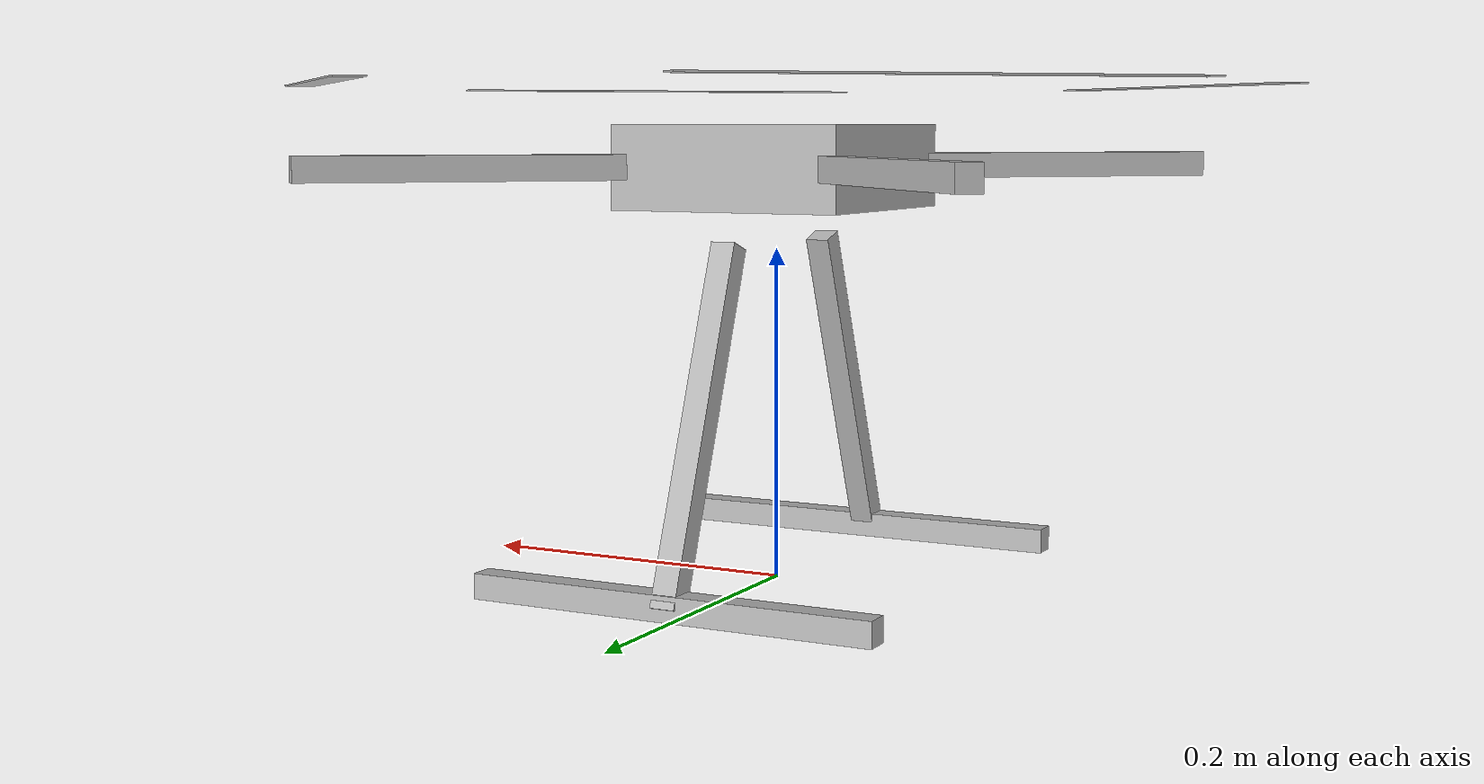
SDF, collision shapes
<?xml version="1.0" encoding="UTF-8"?>
<sdf version='1.9'>
  <model name='holybro_x500'>
    <pose>0 0 0 0 0 0</pose>
    <self_collide>false</self_collide>
    <static>false</static>
    <link name="base_link">
      <inertial>
        <pose>0 0 0.23 0 0 0</pose>
        <mass>2.0</mass>
        <inertia>
          <ixx>0.02166666666666667</ixx>
          <ixy>0</ixy>
          <ixz>0</ixz>
          <iyy>0.02166666666666667</iyy>
          <iyz>0</iyz>
          <izz>0.04000000000000001</izz>
        </inertia>
      </inertial>
      <gravity>true</gravity>
      <velocity_decay/>
      <visual name="base_link_visual">
        <pose>0 0 0 0 0 0</pose>
        <geometry>
          <mesh>
            <scale>1 1 1</scale>
            <uri>model://holybro_x500/meshes/holybro_x500_frame.dae</uri>
          </mesh>
        </geometry>
      </visual>
      <collision name="base_link_collision_0">
        <pose>0 0 0.2495 0 0 0</pose>
        <geometry>
          <box>
            <size>0.144 0.144 0.05</size>
          </box>
        </geometry>
        <surface>
          <contact>
            <ode>
              <min_depth>0.001</min_depth>
              <max_vel>0</max_vel>
            </ode>
          </contact>
          <friction>
            <ode/>
          </friction>
        </surface>
      </collision>
      <collision name="base_link_collision_1">
        <pose>0 -0.098 0.1065 -0.35 0 0</pose>
        <geometry>
          <box>
            <size>0.015 0.015 0.21</size>
          </box>
        </geometry>
        <surface>
          <contact>
            <ode>
              <min_depth>0.001</min_depth>
              <max_vel>0</max_vel>
            </ode>
          </contact>
          <friction>
            <ode/>
          </friction>
        </surface>
      </collision>
      <collision name="base_link_collision_2">
        <pose>0 0.098 0.1065 0.35 0 0</pose>
        <geometry>
          <box>
            <size>0.015 0.015 0.21</size>
          </box>
        </geometry>
        <surface>
          <contact>
            <ode>
              <min_depth>0.001</min_depth>
              <max_vel>0</max_vel>
            </ode>
          </contact>
          <friction>
            <ode/>
          </friction>
        </surface>
      </collision>
      <collision name="base_link_collision_3">
        <pose>0 -0.132 0.01 0 0 0</pose>
        <geometry>
          <box>
            <size>0.25 0.015 0.015</size>
          </box>
        </geometry>
        <surface>
          <contact>
            <ode>
              <min_depth>0.001</min_depth>
              <max_vel>0</max_vel>
            </ode>
          </contact>
          <friction>
            <ode/>
          </friction>
        </surface>
      </collision>
      <collision name="base_link_collision_4">
        <pose>0 0.132 0.01 0 0 0</pose>
        <geometry>
          <box>
            <size>0.25 0.015 0.015</size>
          </box>
        </geometry>
        <surface>
          <contact>
            <ode>
              <min_depth>0.001</min_depth>
              <max_vel>0</max_vel>
            </ode>
          </contact>
          <friction>
            <ode/>
          </friction>
        </surface>
      </collision>
      <collision name="base_link_collision_5">
        <pose>0.13 -0.13 0.2495 0 0 -0.785398</pose>
        <geometry>
          <box>
            <size>0.20 0.015 0.015</size>
          </box>
        </geometry>
        <surface>
          <contact>
            <ode>
              <min_depth>0.001</min_depth>
              <max_vel>0</max_vel>
            </ode>
          </contact>
          <friction>
            <ode/>
          </friction>
        </surface>
      </collision>
      <collision name="base_link_collision_6">
        <pose>-0.13 -0.13 0.2495 0 0 0.785398</pose>
        <geometry>
          <box>
            <size>0.20 0.015 0.015</size>
          </box>
        </geometry>
        <surface>
          <contact>
            <ode>
              <min_depth>0.001</min_depth>
              <max_vel>0</max_vel>
            </ode>
          </contact>
          <friction>
            <ode/>
          </friction>
        </surface>
      </collision>
      <collision name="base_link_collision_7">
        <pose>-0.13 0.13 0.2495 0 0 -0.785398</pose>
        <geometry>
          <box>
            <size>0.20 0.015 0.015</size>
          </box>
        </geometry>
        <surface>
          <contact>
            <ode>
              <min_depth>0.001</min_depth>
              <max_vel>0</max_vel>
            </ode>
          </contact>
          <friction>
            <ode/>
          </friction>
        </surface>
      </collision>
      <collision name="base_link_collision_8">
        <pose>0.13 0.13 0.2495 0 0 0.785398</pose>
        <geometry>
          <box>
            <size>0.20 0.015 0.015</size>
          </box>
        </geometry>
        <surface>
          <contact>
            <ode>
              <min_depth>0.001</min_depth>
              <max_vel>0</max_vel>
            </ode>
          </contact>
          <friction>
            <ode/>
          </friction>
        </surface>
      </collision>
      <sensor name="air_pressure_sensor" type="air_pressure">
        <always_on>1</always_on>
        <update_rate>50</update_rate>
        <air_pressure>
          <pressure>
            <noise type="gaussian">
              <mean>0</mean>
              <stddev>0.01</stddev>
            </noise>
          </pressure>
        </air_pressure>
      </sensor>
      <sensor name="imu_sensor" type="imu">
        <always_on>1</always_on>
        <update_rate>250</update_rate>
      </sensor>
    </link>
    <link name="rotor_0">
      <gravity>true</gravity>
      <self_collide>false</self_collide>
      <velocity_decay/>
      <pose>0.188 -0.188 0.257 0 0 0</pose>
      <inertial>
          <mass>0.016076923076923075</mass>
          <inertia>
            <ixx>3.8464910483993325e-07</ixx>
            <iyy>2.6115851691700804e-05</iyy>
            <izz>2.649858234714004e-05</izz>
          </inertia>
        </inertial>
      <visual name="rotor_0_visual">
        <pose>0 0 0.031 0 0 0</pose>
        <geometry>
          <mesh>
            <scale>1 1 1</scale>
            <uri>model://holybro_x500/meshes/holybro_propeller_ccw.dae</uri>
          </mesh>
        </geometry>
      </visual>
      <visual name="rotor_0_visual_motor_bell">
        <pose>0 0 0 0 0 0</pose>
        <geometry>
          <mesh>
            <scale>1 1 1</scale>
            <uri>model://holybro_x500/meshes/holybro_motor.dae</uri>
          </mesh>
        </geometry>
      </visual>
      <collision name="rotor_0_collision">
        <pose>0 0 0.041 0 0 0.785398 </pose>
        <geometry>
          <box>
            <size>0.2792307692307692 0.016923076923076923 0.0008461538461538462</size>
          </box>
        </geometry>
        <surface>
          <contact>
            <ode>
              <min_depth>0.001</min_depth>
              <max_vel>0</max_vel>
            </ode>
          </contact>
          <friction>
            <ode/>
          </friction>
        </surface>
      </collision>
    </link>
    <joint name="rotor_0_joint" type="revolute">
      <parent>base_link</parent>
      <child>rotor_0</child>
      <axis>
        <xyz>0 0 1</xyz>
        <limit>
          <lower>-1e+16</lower>
          <upper>1e+16</upper>
        </limit>
        <dynamics>
          <spring_reference>0</spring_reference>
          <spring_stiffness>0</spring_stiffness>
        </dynamics>
      </axis>
    </joint>
    <link name="rotor_1">
      <gravity>true</gravity>
      <self_collide>false</self_collide>
      <velocity_decay/>
      <pose>-0.188 0.188 0.257 0 0 0</pose>
      <inertial>
          <mass>0.016076923076923075</mass>
          <inertia>
            <ixx>3.8464910483993325e-07</ixx>
            <iyy>2.6115851691700804e-05</iyy>
            <izz>2.649858234714004e-05</izz>
          </inertia>
        </inertial>
      <visual name="rotor_1_visual">
        <pose>0 0 0.031 0 0 0</pose>
        <geometry>
          <mesh>
            <scale>1 1 1</scale>
            <uri>model://holybro_x500/meshes/holybro_propeller_ccw.dae</uri>
          </mesh>
        </geometry>
      </visual>
      <visual name="rotor_1_visual_motor_top">
        <pose>0 0 0 0 0 0</pose>
        <geometry>
          <mesh>
            <scale>1 1 1</scale>
            <uri>model://holybro_x500/meshes/holybro_motor.dae</uri>
          </mesh>
        </geometry>
      </visual>
      <collision name="rotor_1_collision">
        <pose>0 0 0.041 0 0 0.785398</pose>
        <geometry>
          <box>
            <size>0.2792307692307692 0.016923076923076923 0.0008461538461538462</size>
          </box>
        </geometry>
        <surface>
          <contact>
            <ode>
              <min_depth>0.001</min_depth>
              <max_vel>0</max_vel>
            </ode>
          </contact>
          <friction>
            <ode/>
          </friction>
        </surface>
      </collision>
    </link>
    <joint name="rotor_1_joint" type="revolute">
      <parent>base_link</parent>
      <child>rotor_1</child>
      <axis>
        <xyz>0 0 1</xyz>
        <limit>
          <lower>-1e+16</lower>
          <upper>1e+16</upper>
        </limit>
        <dynamics>
          <spring_reference>0</spring_reference>
          <spring_stiffness>0</spring_stiffness>
        </dynamics>
      </axis>
    </joint>
    <link name="rotor_2">
      <gravity>true</gravity>
      <self_collide>false</self_collide>
      <velocity_decay/>
      <pose>0.188 0.188 0.257 0 0 0</pose>
      <inertial>
          <mass>0.016076923076923075</mass>
          <inertia>
            <ixx>3.8464910483993325e-07</ixx>
            <iyy>2.6115851691700804e-05</iyy>
            <izz>2.649858234714004e-05</izz>
          </inertia>
        </inertial>
      <visual name="rotor_2_visual">
        <pose>0 0 0.031 0 0 0</pose>
        <geometry>
          <mesh>
            <scale>1 1 1</scale>
            <uri>model://holybro_x500/meshes/holybro_propeller_cw.dae</uri>
          </mesh>
        </geometry>
      </visual>
      <visual name="rotor_2_visual_motor_top">
        <pose>0 0 0 0 0 0</pose>
        <geometry>
          <mesh>
            <scale>1 1 1</scale>
            <uri>model://holybro_x500/meshes/holybro_motor.dae</uri>
          </mesh>
        </geometry>
      </visual>
      <collision name="rotor_2_collision">
        <pose>0 0 0.041 0 0 -0.785398</pose>
        <geometry>
          <box>
            <size>0.2792307692307692 0.016923076923076923 0.0008461538461538462</size>
          </box>
        </geometry>
        <surface>
          <contact>
            <ode>
              <min_depth>0.001</min_depth>
              <max_vel>0</max_vel>
            </ode>
          </contact>
          <friction>
            <ode/>
          </friction>
        </surface>
      </collision>
    </link>
    <joint name="rotor_2_joint" type="revolute">
      <parent>base_link</parent>
      <child>rotor_2</child>
      <axis>
        <xyz>0 0 1</xyz>
        <limit>
          <lower>-1e+16</lower>
          <upper>1e+16</upper>
        </limit>
        <dynamics>
          <spring_reference>0</spring_reference>
          <spring_stiffness>0</spring_stiffness>
        </dynamics>
      </axis>
    </joint>
    <link name="rotor_3">
      <gravity>true</gravity>
      <self_collide>false</self_collide>
      <velocity_decay/>
      <pose>-0.188 -0.188 0.257 0 0 0</pose>
      <inertial>
          <mass>0.016076923076923075</mass>
          <inertia>
            <ixx>3.8464910483993325e-07</ixx>
            <iyy>2.6115851691700804e-05</iyy>
            <izz>2.649858234714004e-05</izz>
          </inertia>
        </inertial>
      <visual name="rotor_3_visual">
        <pose>0 0 0.031 0 0 0</pose>
        <geometry>
          <mesh>
            <scale>1 1 1</scale>
            <uri>model://holybro_x500/meshes/holybro_propeller_cw.dae</uri>
          </mesh>
        </geometry>
      </visual>
      <visual name="rotor_3_visual_motor_top">
        <pose>0 0 0 0 0 0</pose>
        <geometry>
          <mesh>
            <scale>1 1 1</scale>
            <uri>model://holybro_x500/meshes/holybro_motor.dae</uri>
          </mesh>
        </geometry>
      </visual>
      <collision name="rotor_3_collision">
        <pose>0 0 0.041 0 0 -0.785398</pose>
        <geometry>
          <box>
            <size>0.2792307692307692 0.016923076923076923 0.0008461538461538462</size>
          </box>
        </geometry>
        <surface>
          <contact>
            <ode>
              <min_depth>0.001</min_depth>
              <max_vel>0</max_vel>
            </ode>
          </contact>
          <friction>
            <ode/>
          </friction>
        </surface>
      </collision>
    </link>
    <joint name="rotor_3_joint" type="revolute">
      <parent>base_link</parent>
      <child>rotor_3</child>
      <axis>
        <xyz>0 0 1</xyz>
        <limit>
          <lower>-1e+16</lower>
          <upper>1e+16</upper>
        </limit>
        <dynamics>
          <spring_reference>0</spring_reference>
          <spring_stiffness>0</spring_stiffness>
        </dynamics>
      </axis>
    </joint>
   <plugin filename="gz-sim-multicopter-motor-model-system" name="gz::sim::systems::MulticopterMotorModel">
      <jointName>rotor_0_joint</jointName>
      <linkName>rotor_0</linkName>
      <turningDirection>ccw</turningDirection>
      <timeConstantUp>0.0125</timeConstantUp>
      <timeConstantDown>0.025</timeConstantDown>
      <maxRotVelocity>1000.0</maxRotVelocity>
      <motorConstant>8.54858e-06</motorConstant>
      <momentConstant>0.016</momentConstant>
      <commandSubTopic>command/motor_speed</commandSubTopic>
      <motorNumber>0</motorNumber>
      <rotorDragCoefficient>8.06428e-05</rotorDragCoefficient>
      <rollingMomentCoefficient>1e-06</rollingMomentCoefficient>
      <rotorVelocitySlowdownSim>10</rotorVelocitySlowdownSim>
      <motorType>velocity</motorType>
    </plugin>
    <plugin filename="gz-sim-multicopter-motor-model-system" name="gz::sim::systems::MulticopterMotorModel">
      <jointName>rotor_1_joint</jointName>
      <linkName>rotor_1</linkName>
      <turningDirection>ccw</turningDirection>
      <timeConstantUp>0.0125</timeConstantUp>
      <timeConstantDown>0.025</timeConstantDown>
      <maxRotVelocity>1000.0</maxRotVelocity>
      <motorConstant>8.54858e-06</motorConstant>
      <momentConstant>0.016</momentConstant>
      <commandSubTopic>command/motor_speed</commandSubTopic>
      <motorNumber>1</motorNumber>
      <rotorDragCoefficient>8.06428e-05</rotorDragCoefficient>
      <rollingMomentCoefficient>1e-06</rollingMomentCoefficient>
      <rotorVelocitySlowdownSim>10</rotorVelocitySlowdownSim>
      <motorType>velocity</motorType>
    </plugin>
    <plugin filename="gz-sim-multicopter-motor-model-system" name="gz::sim::systems::MulticopterMotorModel">
      <jointName>rotor_2_joint</jointName>
      <linkName>rotor_2</linkName>
      <turningDirection>cw</turningDirection>
      <timeConstantUp>0.0125</timeConstantUp>
      <timeConstantDown>0.025</timeConstantDown>
      <maxRotVelocity>1000.0</maxRotVelocity>
      <motorConstant>8.54858e-06</motorConstant>
      <momentConstant>0.016</momentConstant>
      <commandSubTopic>command/motor_speed</commandSubTopic>
      <motorNumber>2</motorNumber>
      <rotorDragCoefficient>8.06428e-05</rotorDragCoefficient>
      <rollingMomentCoefficient>1e-06</rollingMomentCoefficient>
      <rotorVelocitySlowdownSim>10</rotorVelocitySlowdownSim>
      <motorType>velocity</motorType>
    </plugin>
    <plugin filename="gz-sim-multicopter-motor-model-system" name="gz::sim::systems::MulticopterMotorModel">
      <jointName>rotor_3_joint</jointName>
      <linkName>rotor_3</linkName>
      <turningDirection>cw</turningDirection>
      <timeConstantUp>0.0125</timeConstantUp>
      <timeConstantDown>0.025</timeConstantDown>
      <maxRotVelocity>1000.0</maxRotVelocity>
      <motorConstant>8.54858e-06</motorConstant>
      <momentConstant>0.016</momentConstant>
      <commandSubTopic>command/motor_speed</commandSubTopic>
      <motorNumber>3</motorNumber>
      <rotorDragCoefficient>8.06428e-05</rotorDragCoefficient>
      <rollingMomentCoefficient>1e-06</rollingMomentCoefficient>
      <rotorVelocitySlowdownSim>10</rotorVelocitySlowdownSim>
      <motorType>velocity</motorType>
    </plugin>
  </model>
</sdf>
